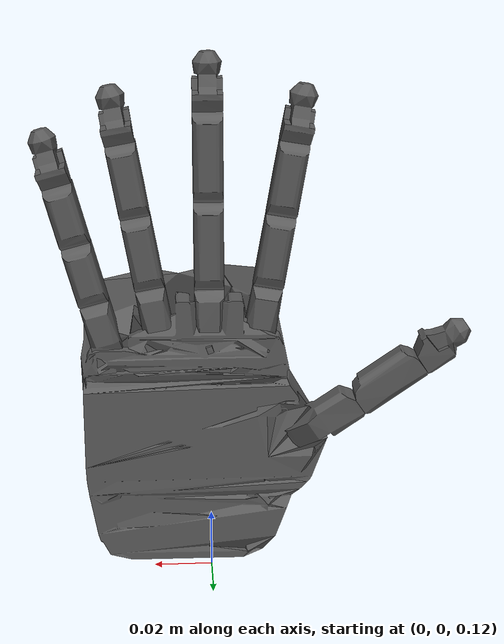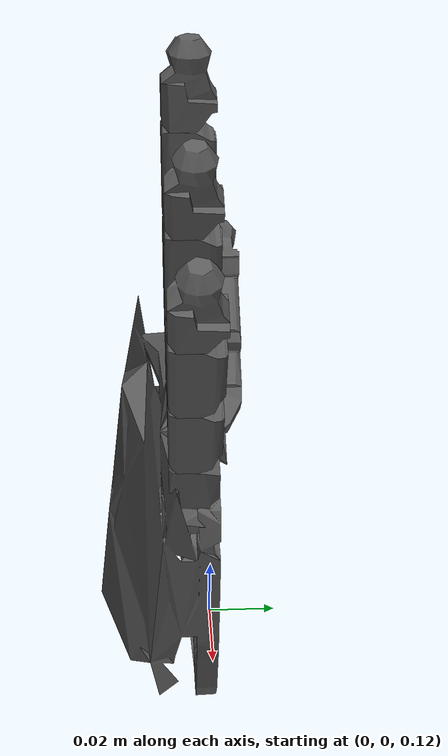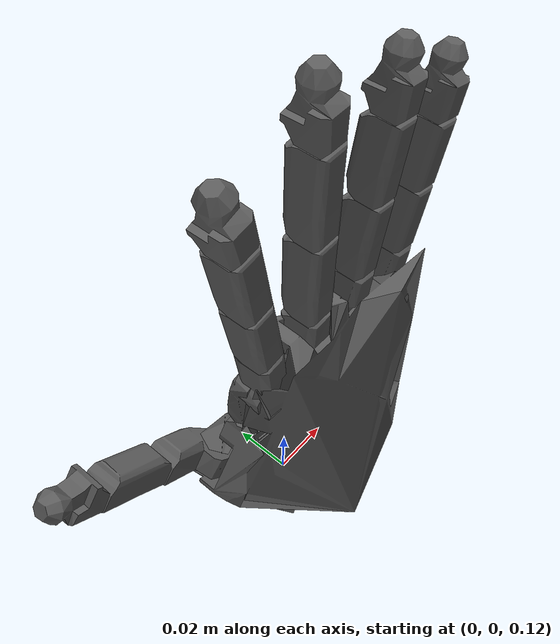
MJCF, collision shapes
<mujoco model="softhand">
  <compiler angle="radian" meshdir="/home/esguerri/SoftHand/src/SoftHand-Plugin/softhands_description/meshes/v3/right/"/>
  <asset>
    <mesh name="palm_pinch" file="palm_pinch.stl" scale="0.001 0.001 0.001"/>
    <mesh name="palm_pinch_collision" file="palm_pinch_collision.stl" scale="0.001 0.001 0.001"/>
    <mesh name="ph_thumb" file="ph_thumb.stl" scale="0.001 0.001 0.001"/>
    <mesh name="ph_thumb_collision" file="ph_thumb_collision.stl" scale="0.001 0.001 0.001"/>
    <mesh name="ph_proximal" file="ph_proximal.stl" scale="0.001 0.001 0.001"/>
    <mesh name="ph_proximal_collision" file="ph_proximal_collision.stl" scale="0.001 0.001 0.001"/>
    <mesh name="ph_distal" file="ph_distal.stl" scale="0.001 0.001 0.001"/>
    <mesh name="ph_distal_collision" file="ph_distal_collision.stl" scale="0.001 0.001 0.001"/>
    <mesh name="ph_index_knuckle" file="ph_index_knuckle.stl" scale="0.001 0.001 0.001"/>
    <mesh name="ph_index_knuckle_collision" file="ph_index_knuckle_collision.stl" scale="0.001 0.001 0.001"/>
    <mesh name="ph_middle_knuckle" file="ph_middle_knuckle.stl" scale="0.001 0.001 0.001"/>
    <mesh name="ph_middle_knuckle_collision" file="ph_middle_knuckle_collision.stl" scale="0.001 0.001 0.001"/>
    <mesh name="ph_proximal_middle" file="ph_proximal_middle.stl" scale="0.001 0.001 0.001"/>
    <mesh name="ph_proximal_middle_collision" file="ph_proximal_middle_collision.stl" scale="0.001 0.001 0.001"/>
    <mesh name="ph_ring_knuckle" file="ph_ring_knuckle.stl" scale="0.001 0.001 0.001"/>
    <mesh name="ph_ring_knuckle_collision" file="ph_ring_knuckle_collision.stl" scale="0.001 0.001 0.001"/>
    <mesh name="ph_proximal_little" file="ph_proximal_little.stl" scale="0.001 0.001 0.001"/>
    <mesh name="ph_proximal_little_collision" file="ph_proximal_little_collision.stl" scale="0.001 0.001 0.001"/>
  </asset>
  <worldbody>
    <geom pos="0 0 0.2" quat="0.707388 0.706825 0 0" type="mesh" contype="0" conaffinity="0" group="1" density="0" rgba="0.35 0.35 0.35 1" mesh="palm_pinch"/>
    <geom pos="0 0 0.2" quat="0.707388 0.706825 0 0" type="mesh" rgba="0.35 0.35 0.35 1" mesh="palm_pinch_collision"/>
    <body name="right_hand_v3_thumb_knuckle_link" pos="-0.0315281 0.00237798 0.172341" quat="0.000119734 0.300706 0.000379722 0.953717">
      <inertial pos="0.0073027 -0.00209743 -0.000192524" quat="-0.0471766 0.675929 -0.206651 0.705826" mass="0.00400276" diaginertia="2.72757e-07 2.72415e-07 6.89658e-08"/>
      <joint name="right_hand_v3_thumb_knuckle_joint" pos="0 0 0" axis="0 0 -1" range="0 1.57" actuatorfrcrange="-30 30" damping="0.03"/>
      <geom type="mesh" contype="0" conaffinity="0" group="1" density="0" rgba="0.35 0.35 0.35 1" mesh="ph_thumb"/>
      <geom type="mesh" rgba="0.35 0.35 0.35 1" mesh="ph_thumb_collision"/>
      <body name="right_hand_v3_thumb_proximal_virtual_link" pos="0.0165 -0.0042 0" quat="0.707107 -0.707107 0 0">
        <inertial pos="0 0 0" quat="0.00438927 0.707093 -0.00438927 0.707093" mass="0.00344335" diaginertia="4.50437e-07 4.38553e-07 5.92007e-08"/>
        <joint name="right_hand_v3_thumb_proximal_virtual_joint" pos="0 0 0" axis="0 0 -1" range="0 0.785398" actuatorfrcrange="-30 30" damping="0.03"/>
        <body name="right_hand_v3_thumb_proximal_link" pos="0.009 0 0">
          <inertial pos="0.00829589 0.000148677 0" quat="0.00438927 0.707093 -0.00438927 0.707093" mass="0.00344335" diaginertia="4.50437e-07 4.38553e-07 5.92007e-08"/>
          <joint name="right_hand_v3_thumb_proximal_joint" pos="0 0 0" axis="0 0 -1" range="0 0.785398" actuatorfrcrange="-30 30" damping="0.03"/>
          <geom type="mesh" contype="0" conaffinity="0" group="1" density="0" rgba="0.35 0.35 0.35 1" mesh="ph_proximal"/>
          <geom type="mesh" rgba="0.35 0.35 0.35 1" mesh="ph_proximal_collision"/>
          <body name="right_hand_v3_thumb_distal_virtual_link" pos="0.016 0 0">
            <inertial pos="0 0 0" quat="0.0131386 0.706985 -0.0131386 0.706985" mass="0.009" diaginertia="6.6782e-07 5.99819e-07 2.654e-07"/>
            <joint name="right_hand_v3_thumb_distal_virtual_joint" pos="0 0 0" axis="0 0 -1" range="0 0.785398" actuatorfrcrange="-30 30" damping="0.03"/>
            <body name="right_hand_v3_thumb_distal_link" pos="0.009 0 0">
              <inertial pos="0.00233796 0.000535801 -0.000450702" quat="0.0131386 0.706985 -0.0131386 0.706985" mass="0.009" diaginertia="6.6782e-07 5.99819e-07 2.654e-07"/>
              <joint name="right_hand_v3_thumb_distal_joint" pos="0 0 0" axis="0 0 -1" range="0 0.785398" actuatorfrcrange="-30 30" damping="0.03"/>
              <geom type="mesh" contype="0" conaffinity="0" group="1" density="0" rgba="0.35 0.35 0.35 1" mesh="ph_distal"/>
              <geom type="mesh" rgba="0.35 0.35 0.35 1" mesh="ph_distal_collision"/>
            </body>
          </body>
        </body>
      </body>
    </body>
    <body name="right_hand_v3_index_knuckle_link" pos="-0.02 -0.0060267 0.200005" quat="0.4547 0.454338 -0.54146 0.541891">
      <inertial pos="0.00826725 -0.00274793 6.3742e-05" quat="0.0201937 0.700219 -0.120065 0.70347" mass="0.00295319" diaginertia="1.7177e-07 1.70069e-07 4.4208e-08"/>
      <joint name="right_hand_v3_index_knuckle_joint" pos="0 0 0" axis="0 0 -1" range="-0.524 0.524" actuatorfrcrange="-30 30" damping="0.03"/>
      <geom type="mesh" contype="0" conaffinity="0" group="1" density="0" rgba="0.35 0.35 0.35 1" mesh="ph_index_knuckle"/>
      <geom type="mesh" rgba="0.35 0.35 0.35 1" mesh="ph_index_knuckle_collision"/>
      <body name="right_hand_v3_index_proximal_virtual_link" pos="0.015 -0.0037 0" quat="0.707107 0.707107 0 0">
        <inertial pos="0 0 0" quat="0.00438927 0.707093 -0.00438927 0.707093" mass="0.00344335" diaginertia="4.50437e-07 4.38553e-07 5.92007e-08"/>
        <joint name="right_hand_v3_index_proximal_virtual_joint" pos="0 0 0" axis="0 0 -1" range="0 0.785398" actuatorfrcrange="-30 30" damping="0.03"/>
        <body name="right_hand_v3_index_proximal_link" pos="0.009 0 0">
          <inertial pos="0.00829589 0.000148677 0" quat="0.00438927 0.707093 -0.00438927 0.707093" mass="0.00344335" diaginertia="4.50437e-07 4.38553e-07 5.92007e-08"/>
          <joint name="right_hand_v3_index_proximal_joint" pos="0 0 0" axis="0 0 -1" range="0 0.785398" actuatorfrcrange="-30 30" damping="0.03"/>
          <geom type="mesh" contype="0" conaffinity="0" group="1" density="0" rgba="0.35 0.35 0.35 1" mesh="ph_proximal"/>
          <geom type="mesh" rgba="0.35 0.35 0.35 1" mesh="ph_proximal_collision"/>
          <body name="right_hand_v3_index_middle_virtual_link" pos="0.016 0 0">
            <inertial pos="0 0 0" quat="0.00438927 0.707093 -0.00438927 0.707093" mass="0.00344335" diaginertia="4.50437e-07 4.38553e-07 5.92007e-08"/>
            <joint name="right_hand_v3_index_middle_virtual_joint" pos="0 0 0" axis="0 0 -1" range="0 0.785398" actuatorfrcrange="-30 30" damping="0.03"/>
            <body name="right_hand_v3_index_middle_link" pos="0.009 0 0">
              <inertial pos="0.00829589 0.000148677 0" quat="0.00438927 0.707093 -0.00438927 0.707093" mass="0.00344335" diaginertia="4.50437e-07 4.38553e-07 5.92007e-08"/>
              <joint name="right_hand_v3_index_middle_joint" pos="0 0 0" axis="0 0 -1" range="0 0.785398" actuatorfrcrange="-30 30" damping="0.03"/>
              <geom type="mesh" contype="0" conaffinity="0" group="1" density="0" rgba="0.35 0.35 0.35 1" mesh="ph_proximal"/>
              <geom type="mesh" rgba="0.35 0.35 0.35 1" mesh="ph_proximal_collision"/>
              <body name="right_hand_v3_index_distal_virtual_link" pos="0.016 0 0">
                <inertial pos="0 0 0" quat="0.0131386 0.706985 -0.0131386 0.706985" mass="0.009" diaginertia="6.6782e-07 5.99819e-07 2.654e-07"/>
                <joint name="right_hand_v3_index_distal_virtual_joint" pos="0 0 0" axis="0 0 -1" range="0 0.785398" actuatorfrcrange="-30 30" damping="0.03"/>
                <body name="right_hand_v3_index_distal_link" pos="0.009 -3.4865e-07 0.0005">
                  <inertial pos="0.00233796 0.000535801 -0.000450702" quat="0.0131386 0.706985 -0.0131386 0.706985" mass="0.009" diaginertia="6.6782e-07 5.99819e-07 2.654e-07"/>
                  <joint name="right_hand_v3_index_distal_joint" pos="0 0 0" axis="0 0 -1" range="0 0.785398" actuatorfrcrange="-30 30" damping="0.03"/>
                  <geom type="mesh" contype="0" conaffinity="0" group="1" density="0" rgba="0.35 0.35 0.35 1" mesh="ph_distal"/>
                  <geom type="mesh" rgba="0.35 0.35 0.35 1" mesh="ph_distal_collision"/>
                </body>
              </body>
            </body>
          </body>
        </body>
      </body>
    </body>
    <body name="right_hand_v3_middle_knuckle_link" pos="0 -0.0063 0.200005" quat="0.500199 0.499801 -0.499801 0.500199">
      <inertial pos="0.0080073 -0.000701689 -0.000220935" quat="0.00775845 0.710111 0.00782575 0.704004" mass="0.00316806" diaginertia="1.73752e-07 1.69587e-07 5.087e-08"/>
      <joint name="right_hand_v3_middle_knuckle_joint" pos="0 0 0" axis="0 0 -1" range="-0.524 0.524" actuatorfrcrange="-30 30" damping="0.03"/>
      <geom type="mesh" contype="0" conaffinity="0" group="1" density="0" rgba="0.35 0.35 0.35 1" mesh="ph_middle_knuckle"/>
      <geom type="mesh" rgba="0.35 0.35 0.35 1" mesh="ph_middle_knuckle_collision"/>
      <body name="right_hand_v3_middle_proximal_virtual_link" pos="0.015 0 -0.000273297" quat="0.707107 0.707107 0 0">
        <inertial pos="0 0 0" quat="0.00349393 0.707098 -0.00349393 0.707098" mass="0.00463755" diaginertia="4.2601e-07 4.16619e-07 7.19489e-08"/>
        <joint name="right_hand_v3_middle_proximal_virtual_joint" pos="0 0 0" axis="0 0 -1" range="0 0.785398" actuatorfrcrange="-30 30" damping="0.03"/>
        <body name="right_hand_v3_middle_proximal_link" pos="0.009 0 0">
          <inertial pos="0.00884921 0.000288383 0" quat="0.00349393 0.707098 -0.00349393 0.707098" mass="0.00463755" diaginertia="4.2601e-07 4.16619e-07 7.19489e-08"/>
          <joint name="right_hand_v3_middle_proximal_joint" pos="0 0 0" axis="0 0 -1" range="0 0.785398" actuatorfrcrange="-30 30" damping="0.03"/>
          <geom type="mesh" contype="0" conaffinity="0" group="1" density="0" rgba="0.35 0.35 0.35 1" mesh="ph_proximal_middle"/>
          <geom type="mesh" rgba="0.35 0.35 0.35 1" mesh="ph_proximal_middle_collision"/>
          <body name="right_hand_v3_middle_middle_virtual_link" pos="0.021 0 0">
            <inertial pos="0 0 0" quat="0.00349393 0.707098 -0.00349393 0.707098" mass="0.00463755" diaginertia="4.2601e-07 4.16619e-07 7.19489e-08"/>
            <joint name="right_hand_v3_middle_middle_virtual_joint" pos="0 0 0" axis="0 0 -1" range="0 0.785398" actuatorfrcrange="-30 30" damping="0.03"/>
            <body name="right_hand_v3_middle_middle_link" pos="0.009 0 0">
              <inertial pos="0.00884921 0.000288383 0" quat="0.00349393 0.707098 -0.00349393 0.707098" mass="0.00463755" diaginertia="4.2601e-07 4.16619e-07 7.19489e-08"/>
              <joint name="right_hand_v3_middle_middle_joint" pos="0 0 0" axis="0 0 -1" range="0 0.785398" actuatorfrcrange="-30 30" damping="0.03"/>
              <geom type="mesh" contype="0" conaffinity="0" group="1" density="0" rgba="0.35 0.35 0.35 1" mesh="ph_proximal_middle"/>
              <geom type="mesh" rgba="0.35 0.35 0.35 1" mesh="ph_proximal_middle_collision"/>
              <body name="right_hand_v3_middle_distal_virtual_link" pos="0.021 0 0">
                <inertial pos="0 0 0" quat="0.0131386 0.706985 -0.0131386 0.706985" mass="0.009" diaginertia="6.6782e-07 5.99819e-07 2.654e-07"/>
                <joint name="right_hand_v3_middle_distal_virtual_joint" pos="0 0 0" axis="0 0 -1" range="0 0.785398" actuatorfrcrange="-30 30" damping="0.03"/>
                <body name="right_hand_v3_middle_distal_link" pos="0.009 -3.4865e-07 0.0005">
                  <inertial pos="0.00233796 0.000535801 -0.000450702" quat="0.0131386 0.706985 -0.0131386 0.706985" mass="0.009" diaginertia="6.6782e-07 5.99819e-07 2.654e-07"/>
                  <joint name="right_hand_v3_middle_distal_joint" pos="0 0 0" axis="0 0 -1" range="0 0.785398" actuatorfrcrange="-30 30" damping="0.03"/>
                  <geom type="mesh" contype="0" conaffinity="0" group="1" density="0" rgba="0.35 0.35 0.35 1" mesh="ph_distal"/>
                  <geom type="mesh" rgba="0.35 0.35 0.35 1" mesh="ph_distal_collision"/>
                </body>
              </body>
            </body>
          </body>
        </body>
      </body>
    </body>
    <body name="right_hand_v3_ring_knuckle_link" pos="0.02 -0.0060267 0.200005" quat="0.541891 0.541459 -0.454339 0.454701">
      <inertial pos="0.00564467 0.00187624 0.000115084" quat="0.428536 0.443116 0.55751 0.556046" mass="0.00432528" diaginertia="2.67986e-07 2.48792e-07 7.2319e-08"/>
      <joint name="right_hand_v3_ring_knuckle_joint" pos="0 0 0" axis="0 0 -1" range="-0.524 0.524" actuatorfrcrange="-30 30" damping="0.03"/>
      <geom type="mesh" contype="0" conaffinity="0" group="1" density="0" rgba="0.35 0.35 0.35 1" mesh="ph_ring_knuckle"/>
      <geom type="mesh" rgba="0.35 0.35 0.35 1" mesh="ph_ring_knuckle_collision"/>
      <body name="right_hand_v3_ring_proximal_virtual_link" pos="0.015 0.0037 0" quat="0.707107 0.707107 0 0">
        <inertial pos="0 0 0" quat="0.00438927 0.707093 -0.00438927 0.707093" mass="0.00344335" diaginertia="4.50437e-07 4.38553e-07 5.92007e-08"/>
        <joint name="right_hand_v3_ring_proximal_virtual_joint" pos="0 0 0" axis="0 0 -1" range="0 0.785398" actuatorfrcrange="-30 30" damping="0.03"/>
        <body name="right_hand_v3_ring_proximal_link" pos="0.009 0 0">
          <inertial pos="0.00829589 0.000148677 0" quat="0.00438927 0.707093 -0.00438927 0.707093" mass="0.00344335" diaginertia="4.50437e-07 4.38553e-07 5.92007e-08"/>
          <joint name="right_hand_v3_ring_proximal_joint" pos="0 0 0" axis="0 0 -1" range="0 0.785398" actuatorfrcrange="-30 30" damping="0.03"/>
          <geom type="mesh" contype="0" conaffinity="0" group="1" density="0" rgba="0.35 0.35 0.35 1" mesh="ph_proximal"/>
          <geom type="mesh" rgba="0.35 0.35 0.35 1" mesh="ph_proximal_collision"/>
          <body name="right_hand_v3_ring_middle_virtual_link" pos="0.016 0 0">
            <inertial pos="0 0 0" quat="0.00438927 0.707093 -0.00438927 0.707093" mass="0.00344335" diaginertia="4.50437e-07 4.38553e-07 5.92007e-08"/>
            <joint name="right_hand_v3_ring_middle_virtual_joint" pos="0 0 0" axis="0 0 -1" range="0 0.785398" actuatorfrcrange="-30 30" damping="0.03"/>
            <body name="right_hand_v3_ring_middle_link" pos="0.009 0 0">
              <inertial pos="0.00829589 0.000148677 0" quat="0.00438927 0.707093 -0.00438927 0.707093" mass="0.00344335" diaginertia="4.50437e-07 4.38553e-07 5.92007e-08"/>
              <joint name="right_hand_v3_ring_middle_joint" pos="0 0 0" axis="0 0 -1" range="0 0.785398" actuatorfrcrange="-30 30" damping="0.03"/>
              <geom type="mesh" contype="0" conaffinity="0" group="1" density="0" rgba="0.35 0.35 0.35 1" mesh="ph_proximal"/>
              <geom type="mesh" rgba="0.35 0.35 0.35 1" mesh="ph_proximal_collision"/>
              <body name="right_hand_v3_ring_distal_virtual_link" pos="0.016 0 0">
                <inertial pos="0 0 0" quat="0.0131386 0.706985 -0.0131386 0.706985" mass="0.009" diaginertia="6.6782e-07 5.99819e-07 2.654e-07"/>
                <joint name="right_hand_v3_ring_distal_virtual_joint" pos="0 0 0" axis="0 0 -1" range="0 0.785398" actuatorfrcrange="-30 30" damping="0.03"/>
                <body name="right_hand_v3_ring_distal_link" pos="0.009 -3.4865e-07 0.0005">
                  <inertial pos="0.00233796 0.000535801 -0.000450702" quat="0.0131386 0.706985 -0.0131386 0.706985" mass="0.009" diaginertia="6.6782e-07 5.99819e-07 2.654e-07"/>
                  <joint name="right_hand_v3_ring_distal_joint" pos="0 0 0" axis="0 0 -1" range="0 0.785398" actuatorfrcrange="-30 30" damping="0.03"/>
                  <geom type="mesh" contype="0" conaffinity="0" group="1" density="0" rgba="0.35 0.35 0.35 1" mesh="ph_distal"/>
                  <geom type="mesh" rgba="0.35 0.35 0.35 1" mesh="ph_distal_collision"/>
                </body>
              </body>
            </body>
          </body>
        </body>
      </body>
    </body>
    <body name="right_hand_v3_little_knuckle_link" pos="0.037 -0.00603068 0.195005" quat="0.561209 0.560762 -0.430288 0.430631">
      <inertial pos="0.00564467 0.00187624 0.000115084" quat="0.428536 0.443116 0.55751 0.556046" mass="0.00432528" diaginertia="2.67986e-07 2.48792e-07 7.2319e-08"/>
      <joint name="right_hand_v3_little_knuckle_joint" pos="0 0 0" axis="0 0 -1" range="-0.524 0.524" actuatorfrcrange="-30 30" damping="0.03"/>
      <geom type="mesh" contype="0" conaffinity="0" group="1" density="0" rgba="0.35 0.35 0.35 1" mesh="ph_ring_knuckle"/>
      <geom type="mesh" rgba="0.35 0.35 0.35 1" mesh="ph_ring_knuckle_collision"/>
      <body name="right_hand_v3_little_proximal_virtual_link" pos="0.015 0.0037 0" quat="0.707107 0.707107 0 0">
        <inertial pos="0 0 0" quat="0.0101201 0.707034 -0.0101201 0.707034" mass="0.00363253" diaginertia="1.56896e-07 1.55637e-07 5.22263e-08"/>
        <joint name="right_hand_v3_little_proximal_virtual_joint" pos="0 0 0" axis="0 0 -1" range="0 0.785398" actuatorfrcrange="-30 30" damping="0.03"/>
        <body name="right_hand_v3_little_proximal_link" pos="0.009 0 0">
          <inertial pos="0.00487123 0.000155901 0" quat="0.0101201 0.707034 -0.0101201 0.707034" mass="0.00363253" diaginertia="1.56896e-07 1.55637e-07 5.22263e-08"/>
          <joint name="right_hand_v3_little_proximal_joint" pos="0 0 0" axis="0 0 -1" range="0 0.785398" actuatorfrcrange="-30 30" damping="0.03"/>
          <geom type="mesh" contype="0" conaffinity="0" group="1" density="0" rgba="0.35 0.35 0.35 1" mesh="ph_proximal_little"/>
          <geom type="mesh" rgba="0.35 0.35 0.35 1" mesh="ph_proximal_little_collision"/>
          <body name="right_hand_v3_little_middle_virtual_link" pos="0.012 0 0">
            <inertial pos="0 0 0" quat="0.0101201 0.707034 -0.0101201 0.707034" mass="0.00363253" diaginertia="1.56896e-07 1.55637e-07 5.22263e-08"/>
            <joint name="right_hand_v3_little_middle_virtual_joint" pos="0 0 0" axis="0 0 -1" range="0 0.785398" actuatorfrcrange="-30 30" damping="0.03"/>
            <body name="right_hand_v3_little_middle_link" pos="0.009 0 0">
              <inertial pos="0.00487123 0.000155901 0" quat="0.0101201 0.707034 -0.0101201 0.707034" mass="0.00363253" diaginertia="1.56896e-07 1.55637e-07 5.22263e-08"/>
              <joint name="right_hand_v3_little_middle_joint" pos="0 0 0" axis="0 0 -1" range="0 0.785398" actuatorfrcrange="-30 30" damping="0.03"/>
              <geom type="mesh" contype="0" conaffinity="0" group="1" density="0" rgba="0.35 0.35 0.35 1" mesh="ph_proximal_little"/>
              <geom type="mesh" rgba="0.35 0.35 0.35 1" mesh="ph_proximal_little_collision"/>
              <body name="right_hand_v3_little_distal_virtual_link" pos="0.012 0 0">
                <inertial pos="0 0 0" quat="0.0131386 0.706985 -0.0131386 0.706985" mass="0.009" diaginertia="6.6782e-07 5.99819e-07 2.654e-07"/>
                <joint name="right_hand_v3_little_distal_virtual_joint" pos="0 0 0" axis="0 0 -1" range="0 0.785398" actuatorfrcrange="-30 30" damping="0.03"/>
                <body name="right_hand_v3_little_distal_link" pos="0.009 -3.4865e-07 0.0005">
                  <inertial pos="0.00233796 0.000535801 -0.000450702" quat="0.0131386 0.706985 -0.0131386 0.706985" mass="0.009" diaginertia="6.6782e-07 5.99819e-07 2.654e-07"/>
                  <joint name="right_hand_v3_little_distal_joint" pos="0 0 0" axis="0 0 -1" range="0 0.785398" actuatorfrcrange="-30 30" damping="0.03"/>
                  <geom type="mesh" contype="0" conaffinity="0" group="1" density="0" rgba="0.35 0.35 0.35 1" mesh="ph_distal"/>
                  <geom type="mesh" rgba="0.35 0.35 0.35 1" mesh="ph_distal_collision"/>
                </body>
              </body>
            </body>
          </body>
        </body>
      </body>
    </body>
  </worldbody>
</mujoco>
